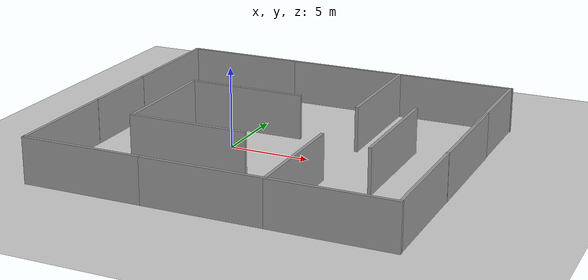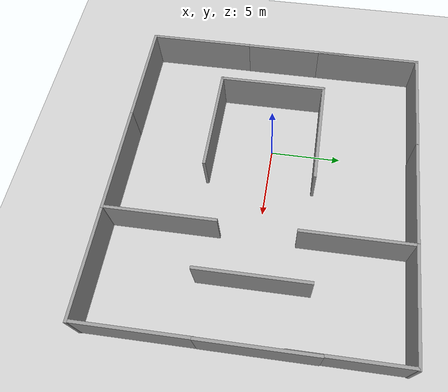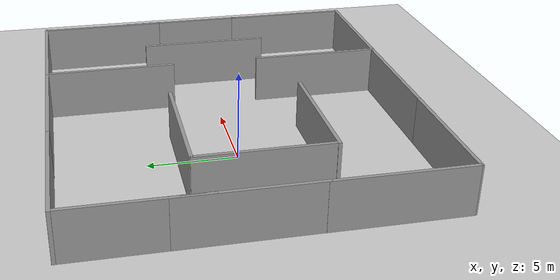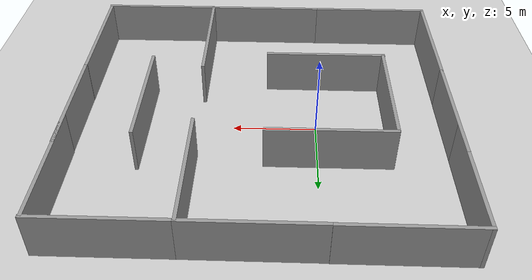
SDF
<sdf version="1.6">
 <world name="default">
  <light name="sun" type="directional">
   <pose>0 0 10 0 -0 0</pose>
   <diffuse>0.8 0.8 0.8 1</diffuse>
   <specular>0.1 0.1 0.1 1</specular>
   <attenuation>
    <range>1000</range>
    <constant>0.9</constant>
    <linear>0.01</linear>
    <quadratic>0.001</quadratic>
   </attenuation>
   <direction>-0.5 0.5 -1</direction>
  </light>
  <model name="ground_plane">
   <static>1</static>
   <link name="link">
    <collision name="collision">
     <geometry><plane><normal>0 0 1</normal><size>100 100</size></plane></geometry>
     <surface><friction><ode><mu>100</mu><mu2>50</mu2></ode></friction></surface>
    </collision>
    <visual name="visual">
     <cast_shadows>0</cast_shadows>
     <geometry><plane><normal>0 0 1</normal><size>100 100</size></plane></geometry>
     <material>
      <script><uri>file://media/materials/scripts/gazebo.material</uri><name>Gazebo/Grey</name></script>
     </material>
    </visual>
   </link>
  </model>
  <gravity>0 0 -9.8</gravity>
  <magnetic_field>6e-06 2.3e-05 -4.2e-05</magnetic_field>
  <atmosphere type="adiabatic"/>
  <physics name="default_physics" default="0" type="ode">
   <max_step_size>0.001</max_step_size>
   <real_time_factor>1</real_time_factor>
   <real_time_update_rate>1000</real_time_update_rate>
  </physics>
  <scene><ambient>0.4 0.4 0.4 1</ambient><background>0.7 0.7 0.7 1</background><shadows>1</shadows></scene>
  <spherical_coordinates>
   <surface_model>EARTH_WGS84</surface_model>
   <latitude_deg>0</latitude_deg>
   <longitude_deg>0</longitude_deg>
   <elevation>0</elevation>
   <heading_deg>0</heading_deg>
  </spherical_coordinates>
  <model name="grey_wall">
   <static>1</static>
   <link name="link">
    <pose>0 0 1.4 0 -0 0</pose>
    <collision name="collision"><geometry><box><size>7.5 0.2 2.8</size></box></geometry></collision>
    <visual name="visual">
     <cast_shadows>0</cast_shadows>
     <geometry><box><size>7.5 0.2 2.8</size></box></geometry>
     <material>
      <script>
       <uri>model://grey_wall/materials/scripts</uri>
       <uri>model://grey_wall/materials/textures</uri>
       <name>vrc/grey_wall</name>
      </script>
     </material>
    </visual>
   </link>
   <pose>-0.671386 -4.22334 0 0 -0 0</pose>
  </model>
  <model name="grey_wall_0">
   <static>1</static>
   <link name="link">
    <pose>0 0 1.4 0 -0 0</pose>
    <collision name="collision"><geometry><box><size>7.5 0.2 2.8</size></box></geometry></collision>
    <visual name="visual">
     <cast_shadows>0</cast_shadows>
     <geometry><box><size>7.5 0.2 2.8</size></box></geometry>
     <material>
      <script>
       <uri>model://grey_wall/materials/scripts</uri>
       <uri>model://grey_wall/materials/textures</uri>
       <name>vrc/grey_wall</name>
      </script>
     </material>
    </visual>
   </link>
   <pose>-0.618657 3.2387 0 0 -0 0</pose>
  </model>
  <model name="grey_wall_1">
   <static>1</static>
   <link name="link">
    <pose>0 0 1.4 0 -0 0</pose>
    <collision name="collision"><geometry><box><size>7.5 0.2 2.8</size></box></geometry></collision>
    <visual name="visual">
     <cast_shadows>0</cast_shadows>
     <geometry><box><size>7.5 0.2 2.8</size></box></geometry>
     <material>
      <script>
       <uri>model://grey_wall/materials/scripts</uri>
       <uri>model://grey_wall/materials/textures</uri>
       <name>vrc/grey_wall</name>
      </script>
     </material>
    </visual>
   </link>
   <pose>-4.05921 -10.0766 0 0 -0 0</pose>
  </model>
  <model name="grey_wall_2">
   <static>1</static>
   <link name="link">
    <pose>0 0 1.4 0 -0 0</pose>
    <collision name="collision"><geometry><box><size>7.5 0.2 2.8</size></box></geometry></collision>
    <visual name="visual">
     <cast_shadows>0</cast_shadows>
     <geometry><box><size>7.5 0.2 2.8</size></box></geometry>
     <material>
      <script>
       <uri>model://grey_wall/materials/scripts</uri>
       <uri>model://grey_wall/materials/textures</uri>
       <name>vrc/grey_wall</name>
      </script>
     </material>
    </visual>
   </link>
   <pose>3.40813 -10.0825 0 0 -0 0</pose>
  </model>
  <model name="grey_wall_3">
   <static>1</static>
   <link name="link">
    <pose>0 0 1.4 0 -0 0</pose>
    <collision name="collision"><geometry><box><size>7.5 0.2 2.8</size></box></geometry></collision>
    <visual name="visual">
     <cast_shadows>0</cast_shadows>
     <geometry><box><size>7.5 0.2 2.8</size></box></geometry>
     <material>
      <script>
       <uri>model://grey_wall/materials/scripts</uri>
       <uri>model://grey_wall/materials/textures</uri>
       <name>vrc/grey_wall</name>
      </script>
     </material>
    </visual>
   </link>
   <pose>-4.06702 9.98006 0 0 -0 0</pose>
  </model>
  <model name="grey_wall_4">
   <static>1</static>
   <link name="link">
    <pose>0 0 1.4 0 -0 0</pose>
    <collision name="collision"><geometry><box><size>7.5 0.2 2.8</size></box></geometry></collision>
    <visual name="visual">
     <cast_shadows>0</cast_shadows>
     <geometry><box><size>7.5 0.2 2.8</size></box></geometry>
     <material>
      <script>
       <uri>model://grey_wall/materials/scripts</uri>
       <uri>model://grey_wall/materials/textures</uri>
       <name>vrc/grey_wall</name>
      </script>
     </material>
    </visual>
   </link>
   <pose>3.43665 9.9653 0 0 -0 0</pose>
  </model>
  <model name="grey_wall_clone">
   <static>1</static>
   <link name="link">
    <pose>0 0 1.4 0 -0 0</pose>
    <collision name="collision"><geometry><box><size>7.5 0.2 2.8</size></box></geometry></collision>
    <visual name="visual">
     <cast_shadows>0</cast_shadows>
     <geometry><box><size>7.5 0.2 2.8</size></box></geometry>
     <material>
      <script>
       <uri>model://grey_wall/materials/scripts</uri>
       <uri>model://grey_wall/materials/textures</uri>
       <name>vrc/grey_wall</name>
      </script>
     </material>
    </visual>
   </link>
   <pose>-4.29051 -0.461961 0 0 0 -1.5708</pose>
  </model>
  <model name="grey_wall_clone_clone">
   <static>1</static>
   <link name="link">
    <pose>0 0 1.4 0 -0 0</pose>
    <collision name="collision"><geometry><box><size>7.5 0.2 2.8</size></box></geometry></collision>
    <visual name="visual">
     <cast_shadows>0</cast_shadows>
     <geometry><box><size>7.5 0.2 2.8</size></box></geometry>
     <material>
      <script>
       <uri>model://grey_wall/materials/scripts</uri>
       <uri>model://grey_wall/materials/textures</uri>
       <name>vrc/grey_wall</name>
      </script>
     </material>
    </visual>
   </link>
   <pose>-7.71946 -6.33639 0 0 0 -1.5708</pose>
  </model>
  <model name="grey_wall_clone_clone_0">
   <static>1</static>
   <link name="link">
    <pose>0 0 1.4 0 -0 0</pose>
    <collision name="collision"><geometry><box><size>7.5 0.2 2.8</size></box></geometry></collision>
    <visual name="visual">
     <cast_shadows>0</cast_shadows>
     <geometry><box><size>7.5 0.2 2.8</size></box></geometry>
     <material>
      <script>
       <uri>model://grey_wall/materials/scripts</uri>
       <uri>model://grey_wall/materials/textures</uri>
       <name>vrc/grey_wall</name>
      </script>
     </material>
    </visual>
   </link>
   <pose>-7.71059 1.02566 0 0 0 -1.5708</pose>
  </model>
  <model name="grey_wall_clone_clone_1">
   <static>1</static>
   <link name="link">
    <pose>0 0 1.4 0 -0 0</pose>
    <collision name="collision"><geometry><box><size>7.5 0.2 2.8</size></box></geometry></collision>
    <visual name="visual">
     <cast_shadows>0</cast_shadows>
     <geometry><box><size>7.5 0.2 2.8</size></box></geometry>
     <material>
      <script>
       <uri>model://grey_wall/materials/scripts</uri>
       <uri>model://grey_wall/materials/textures</uri>
       <name>vrc/grey_wall</name>
      </script>
     </material>
    </visual>
   </link>
   <pose>-7.70494 6.33211 0 0 0 -1.5708</pose>
  </model>
  <model name="grey_wall_clone_clone_2">
   <static>1</static>
   <link name="link">
    <pose>0 0 1.4 0 -0 0</pose>
    <collision name="collision"><geometry><box><size>7.5 0.2 2.8</size></box></geometry></collision>
    <visual name="visual">
     <cast_shadows>0</cast_shadows>
     <geometry><box><size>7.5 0.2 2.8</size></box></geometry>
     <material>
      <script>
       <uri>model://grey_wall/materials/scripts</uri>
       <uri>model://grey_wall/materials/textures</uri>
       <name>vrc/grey_wall</name>
      </script>
     </material>
    </visual>
   </link>
   <pose>7.04719 -6.34774 0 0 0 -1.5708</pose>
  </model>
  <model name="grey_wall_clone_clone_3">
   <static>1</static>
   <link name="link">
    <pose>0 0 1.4 0 -0 0</pose>
    <collision name="collision"><geometry><box><size>7.5 0.2 2.8</size></box></geometry></collision>
    <visual name="visual">
     <cast_shadows>0</cast_shadows>
     <geometry><box><size>7.5 0.2 2.8</size></box></geometry>
     <material>
      <script>
       <uri>model://grey_wall/materials/scripts</uri>
       <uri>model://grey_wall/materials/textures</uri>
       <name>vrc/grey_wall</name>
      </script>
     </material>
    </visual>
   </link>
   <pose>10.3035 0.060382 0 0 0 -1.5708</pose>
  </model>
  <model name="grey_wall_clone_clone_4">
   <static>1</static>
   <link name="link">
    <pose>0 0 1.4 0 -0 0</pose>
    <collision name="collision"><geometry><box><size>7.5 0.2 2.8</size></box></geometry></collision>
    <visual name="visual">
     <cast_shadows>0</cast_shadows>
     <geometry><box><size>7.5 0.2 2.8</size></box></geometry>
     <material>
      <script>
       <uri>model://grey_wall/materials/scripts</uri>
       <uri>model://grey_wall/materials/textures</uri>
       <name>vrc/grey_wall</name>
      </script>
     </material>
    </visual>
   </link>
   <pose>7.0654 6.2296 0 0 0 -1.5708</pose>
  </model>
  <model name="grey_wall_2_clone">
   <static>1</static>
   <link name="link">
    <pose>0 0 1.4 0 -0 0</pose>
    <collision name="collision"><geometry><box><size>7.5 0.2 2.8</size></box></geometry></collision>
    <visual name="visual">
     <cast_shadows>0</cast_shadows>
     <geometry><box><size>7.5 0.2 2.8</size></box></geometry>
     <material>
      <script>
       <uri>model://grey_wall/materials/scripts</uri>
       <uri>model://grey_wall/materials/textures</uri>
       <name>vrc/grey_wall</name>
      </script>
     </material>
    </visual>
   </link>
   <pose>10.7401 -10.0888 0 0 -0 0</pose>
  </model>
  <model name="grey_wall_2_clone_0">
   <static>1</static>
   <link name="link">
    <pose>0 0 1.4 0 -0 0</pose>
    <collision name="collision"><geometry><box><size>7.5 0.2 2.8</size></box></geometry></collision>
    <visual name="visual">
     <cast_shadows>0</cast_shadows>
     <geometry><box><size>7.5 0.2 2.8</size></box></geometry>
     <material>
      <script>
       <uri>model://grey_wall/materials/scripts</uri>
       <uri>model://grey_wall/materials/textures</uri>
       <name>vrc/grey_wall</name>
      </script>
     </material>
    </visual>
   </link>
   <pose>10.7294 9.96502 0 0 -0 0</pose>
  </model>
  <model name="grey_wall_clone_clone_3_clone">
   <static>1</static>
   <link name="link">
    <pose>0 0 1.4 0 -0 0</pose>
    <collision name="collision"><geometry><box><size>7.5 0.2 2.8</size></box></geometry></collision>
    <visual name="visual">
     <cast_shadows>0</cast_shadows>
     <geometry><box><size>7.5 0.2 2.8</size></box></geometry>
     <material>
      <script>
       <uri>model://grey_wall/materials/scripts</uri>
       <uri>model://grey_wall/materials/textures</uri>
       <name>vrc/grey_wall</name>
      </script>
     </material>
    </visual>
   </link>
   <pose>14.3614 -6.31292 0 0 0 -1.5708</pose>
  </model>
  <model name="grey_wall_clone_clone_3_clone_0">
   <static>1</static>
   <link name="link">
    <pose>0 0 1.4 0 -0 0</pose>
    <collision name="collision"><geometry><box><size>7.5 0.2 2.8</size></box></geometry></collision>
    <visual name="visual">
     <cast_shadows>0</cast_shadows>
     <geometry><box><size>7.5 0.2 2.8</size></box></geometry>
     <material>
      <script>
       <uri>model://grey_wall/materials/scripts</uri>
       <uri>model://grey_wall/materials/textures</uri>
       <name>vrc/grey_wall</name>
      </script>
     </material>
    </visual>
   </link>
   <pose>14.3728 0.959058 0 0 0 -1.5708</pose>
  </model>
  <model name="grey_wall_clone_clone_3_clone_1">
   <static>1</static>
   <link name="link">
    <pose>0 0 1.4 0 -0 0</pose>
    <collision name="collision"><geometry><box><size>7.5 0.2 2.8</size></box></geometry></collision>
    <visual name="visual">
     <cast_shadows>0</cast_shadows>
     <geometry><box><size>7.5 0.2 2.8</size></box></geometry>
     <material>
      <script>
       <uri>model://grey_wall/materials/scripts</uri>
       <uri>model://grey_wall/materials/textures</uri>
       <name>vrc/grey_wall</name>
      </script>
     </material>
    </visual>
   </link>
   <pose>14.3399 6.21894 0 0 0 -1.5708</pose>
  </model>
 </world>
</sdf>
